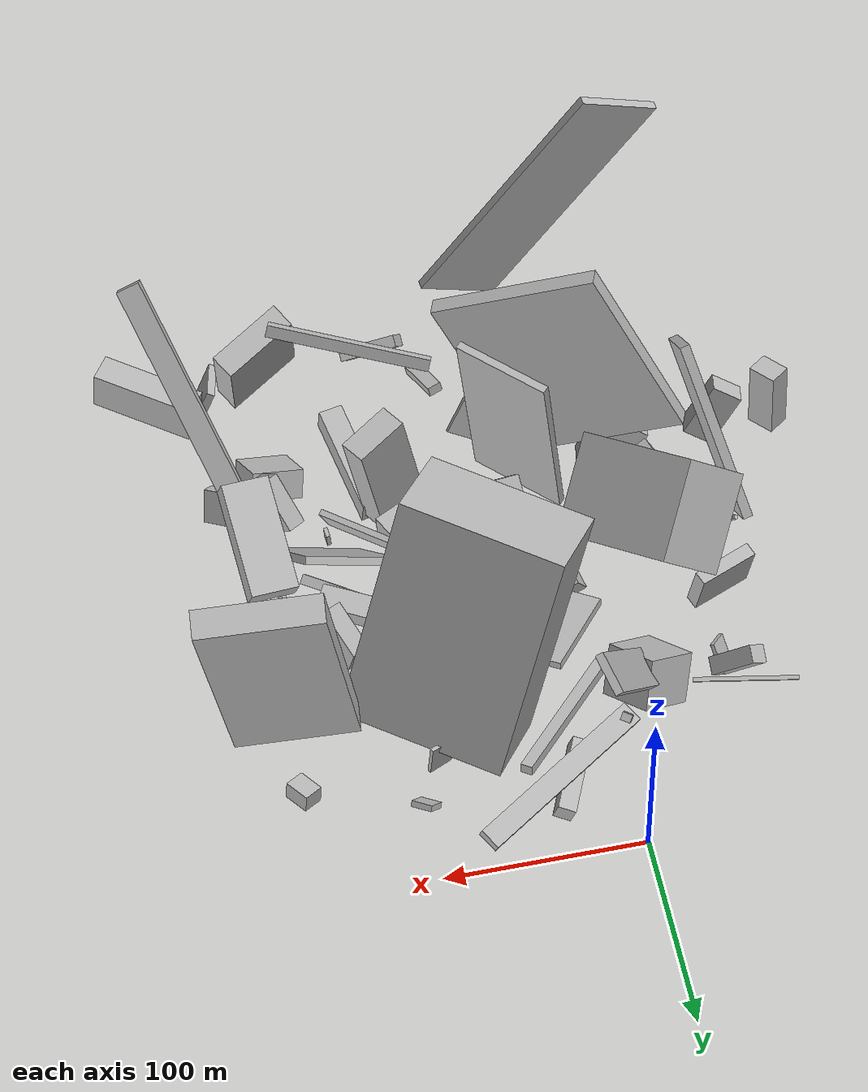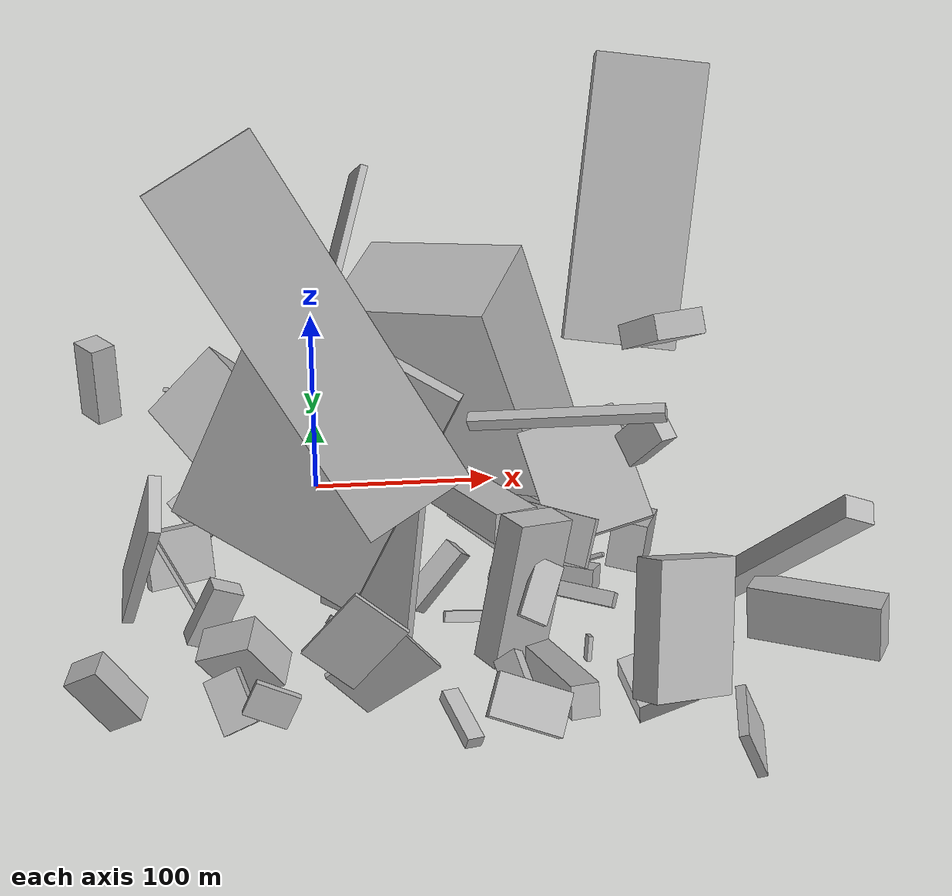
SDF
<sdf version="1.6">
 <world name="default">
  <model name="building_9">
   <static>0</static>
   <pose>60.13477899382774 -101.71023403036946 83.49066467808512 1.1164398579038701 0.09464951068654272 2.5554855638131153</pose>
   <link name="link">
    <gravity>0</gravity>
    <pose>0 0 25.5 0 0 0</pose>
    <collision name="collision"><geometry><box><size>82 119 51</size></box></geometry></collision>
    <visual name="visual">
     <cast_shadows>0</cast_shadows>
     <geometry><box><size>82 119 51</size></box></geometry>
     <material>
      <script>
       <uri>model://HANNAS_wall/materials/scripts</uri>
       <uri>model://HANNAS_wall/materials/textures</uri>
       <name>vrc/HANNAS_wall</name>
      </script>
     </material>
    </visual>
   </link>
  </model>
  <model name="building_14">
   <static>0</static>
   <pose>160.7187048860955 -40.6248234948643 91.645018674083 -0.11374480422894169 -0.2537876858411503 -1.6678482407939665</pose>
   <link name="link">
    <gravity>0</gravity>
    <pose>0 0 75.0 0 0 0</pose>
    <collision name="collision"><geometry><box><size>14 59 150</size></box></geometry></collision>
    <visual name="visual">
     <cast_shadows>0</cast_shadows>
     <geometry><box><size>14 59 150</size></box></geometry>
     <material>
      <script>
       <uri>model://HANNAS_wall/materials/scripts</uri>
       <uri>model://HANNAS_wall/materials/textures</uri>
       <name>vrc/HANNAS_wall</name>
      </script>
     </material>
    </visual>
   </link>
  </model>
  <model name="building_15">
   <static>0</static>
   <pose>-19.535070318286742 -119.30955158458937 67.90622841023128 -0.8755035193617655 -0.4528839900669452 2.260460562549237</pose>
   <link name="link">
    <gravity>0</gravity>
    <pose>0 0 25.0 0 0 0</pose>
    <collision name="collision"><geometry><box><size>70 40 50</size></box></geometry></collision>
    <visual name="visual">
     <cast_shadows>0</cast_shadows>
     <geometry><box><size>70 40 50</size></box></geometry>
     <material>
      <script>
       <uri>model://HANNAS_wall/materials/scripts</uri>
       <uri>model://HANNAS_wall/materials/textures</uri>
       <name>vrc/HANNAS_wall</name>
      </script>
     </material>
    </visual>
   </link>
  </model>
  <model name="building_16">
   <static>0</static>
   <pose>172.7355395353499 -241.46146706500215 64.11279238283072 2.3700065892392104 0.3466365825402684 0.09729424033469207</pose>
   <link name="link">
    <gravity>0</gravity>
    <pose>0 0 4.5 0 0 0</pose>
    <collision name="collision"><geometry><box><size>12 150 9</size></box></geometry></collision>
    <visual name="visual">
     <cast_shadows>0</cast_shadows>
     <geometry><box><size>12 150 9</size></box></geometry>
     <material>
      <script>
       <uri>model://HANNAS_wall/materials/scripts</uri>
       <uri>model://HANNAS_wall/materials/textures</uri>
       <name>vrc/HANNAS_wall</name>
      </script>
     </material>
    </visual>
   </link>
  </model>
  <model name="building_18">
   <static>0</static>
   <pose>170.8844857625791 -256.08720031553906 51.54665389722184 -0.25249838128735286 -1.5036676789013927 2.800130498686935</pose>
   <link name="link">
    <gravity>0</gravity>
    <pose>0 0 26.0 0 0 0</pose>
    <collision name="collision"><geometry><box><size>22 14 52</size></box></geometry></collision>
    <visual name="visual">
     <cast_shadows>0</cast_shadows>
     <geometry><box><size>22 14 52</size></box></geometry>
     <material>
      <script>
       <uri>model://HANNAS_wall/materials/scripts</uri>
       <uri>model://HANNAS_wall/materials/textures</uri>
       <name>vrc/HANNAS_wall</name>
      </script>
     </material>
    </visual>
   </link>
  </model>
  <model name="building_27">
   <static>0</static>
   <pose>13.74465970143904 -116.24034920806787 14.94196082592813 -0.1705758622511373 0.11733676189713037 -2.2309354585838594</pose>
   <link name="link">
    <gravity>0</gravity>
    <pose>0 0 2.0 0 0 0</pose>
    <collision name="collision"><geometry><box><size>47 15 4</size></box></geometry></collision>
    <visual name="visual">
     <cast_shadows>0</cast_shadows>
     <geometry><box><size>47 15 4</size></box></geometry>
     <material>
      <script>
       <uri>model://HANNAS_wall/materials/scripts</uri>
       <uri>model://HANNAS_wall/materials/textures</uri>
       <name>vrc/HANNAS_wall</name>
      </script>
     </material>
    </visual>
   </link>
  </model>
  <model name="building_28">
   <static>0</static>
   <pose>160.47362897193221 -125.85510367707263 18.009385944091832 -1.0356911204883308 -1.3672941690821099 0.6542306050220811</pose>
   <link name="link">
    <gravity>0</gravity>
    <pose>0 0 8.5 0 0 0</pose>
    <collision name="collision"><geometry><box><size>23 36 17</size></box></geometry></collision>
    <visual name="visual">
     <cast_shadows>0</cast_shadows>
     <geometry><box><size>23 36 17</size></box></geometry>
     <material>
      <script>
       <uri>model://HANNAS_wall/materials/scripts</uri>
       <uri>model://HANNAS_wall/materials/textures</uri>
       <name>vrc/HANNAS_wall</name>
      </script>
     </material>
    </visual>
   </link>
  </model>
  <model name="building_30">
   <static>0</static>
   <pose>28.926033329928195 -185.80888653516772 30.63388241619656 0.004264825466254507 -0.6442551364319137 -1.4571450838844509</pose>
   <link name="link">
    <gravity>0</gravity>
    <pose>0 0 4.0 0 0 0</pose>
    <collision name="collision"><geometry><box><size>28 16 8</size></box></geometry></collision>
    <visual name="visual">
     <cast_shadows>0</cast_shadows>
     <geometry><box><size>28 16 8</size></box></geometry>
     <material>
      <script>
       <uri>model://HANNAS_wall/materials/scripts</uri>
       <uri>model://HANNAS_wall/materials/textures</uri>
       <name>vrc/HANNAS_wall</name>
      </script>
     </material>
    </visual>
   </link>
  </model>
  <model name="building_31">
   <static>0</static>
   <pose>42.055347397990644 -216.9180732111798 78.5365733565686 -1.4642324846294754 -1.4266939049242715 0.6672654650277461</pose>
   <link name="link">
    <gravity>0</gravity>
    <pose>0 0 25.0 0 0 0</pose>
    <collision name="collision"><geometry><box><size>108 4 50</size></box></geometry></collision>
    <visual name="visual">
     <cast_shadows>0</cast_shadows>
     <geometry><box><size>108 4 50</size></box></geometry>
     <material>
      <script>
       <uri>model://HANNAS_wall/materials/scripts</uri>
       <uri>model://HANNAS_wall/materials/textures</uri>
       <name>vrc/HANNAS_wall</name>
      </script>
     </material>
    </visual>
   </link>
  </model>
  <model name="building_36">
   <static>0</static>
   <pose>-21.493926255507375 -226.3154397715121 25.89433831909068 2.283878639696302 -0.9434738710445192 -2.6021172739589566</pose>
   <link name="link">
    <gravity>0</gravity>
    <pose>0 0 13.0 0 0 0</pose>
    <collision name="collision"><geometry><box><size>28 16 26</size></box></geometry></collision>
    <visual name="visual">
     <cast_shadows>0</cast_shadows>
     <geometry><box><size>28 16 26</size></box></geometry>
     <material>
      <script>
       <uri>model://HANNAS_wall/materials/scripts</uri>
       <uri>model://HANNAS_wall/materials/textures</uri>
       <name>vrc/HANNAS_wall</name>
      </script>
     </material>
    </visual>
   </link>
  </model>
  <model name="building_39">
   <static>0</static>
   <pose>116.51291447882542 -146.66933766453351 15.271578702733533 -0.06804166189960638 -1.3950843937231159 1.139825785941166</pose>
   <link name="link">
    <gravity>0</gravity>
    <pose>0 0 6.0 0 0 0</pose>
    <collision name="collision"><geometry><box><size>11 32 12</size></box></geometry></collision>
    <visual name="visual">
     <cast_shadows>0</cast_shadows>
     <geometry><box><size>11 32 12</size></box></geometry>
     <material>
      <script>
       <uri>model://HANNAS_wall/materials/scripts</uri>
       <uri>model://HANNAS_wall/materials/textures</uri>
       <name>vrc/HANNAS_wall</name>
      </script>
     </material>
    </visual>
   </link>
  </model>
  <model name="building_40">
   <static>0</static>
   <pose>81.5292968145032 -206.25808592437338 41.836148646674545 1.9453895226269167 -1.3936320498122434 0.1757834339767797</pose>
   <link name="link">
    <gravity>0</gravity>
    <pose>0 0 7.0 0 0 0</pose>
    <collision name="collision"><geometry><box><size>65 28 14</size></box></geometry></collision>
    <visual name="visual">
     <cast_shadows>0</cast_shadows>
     <geometry><box><size>65 28 14</size></box></geometry>
     <material>
      <script>
       <uri>model://HANNAS_wall/materials/scripts</uri>
       <uri>model://HANNAS_wall/materials/textures</uri>
       <name>vrc/HANNAS_wall</name>
      </script>
     </material>
    </visual>
   </link>
  </model>
  <model name="building_43">
   <static>0</static>
   <pose>128.8175259623771 -168.4559072783942 44.33646672936675 -0.38592492895103275 0.6846433082310964 1.3121655891506354</pose>
   <link name="link">
    <gravity>0</gravity>
    <pose>0 0 28.5 0 0 0</pose>
    <collision name="collision"><geometry><box><size>4 47 57</size></box></geometry></collision>
    <visual name="visual">
     <cast_shadows>0</cast_shadows>
     <geometry><box><size>4 47 57</size></box></geometry>
     <material>
      <script>
       <uri>model://HANNAS_wall/materials/scripts</uri>
       <uri>model://HANNAS_wall/materials/textures</uri>
       <name>vrc/HANNAS_wall</name>
      </script>
     </material>
    </visual>
   </link>
  </model>
  <model name="building_45">
   <static>0</static>
   <pose>37.38668943945802 -267.5259361406471 105.66129239658703 0.5129553614419627 -0.14192077662287586 -1.4431835028182016</pose>
   <link name="link">
    <gravity>0</gravity>
    <pose>0 0 75.0 0 0 0</pose>
    <collision name="collision"><geometry><box><size>4 44 150</size></box></geometry></collision>
    <visual name="visual">
     <cast_shadows>0</cast_shadows>
     <geometry><box><size>4 44 150</size></box></geometry>
     <material>
      <script>
       <uri>model://HANNAS_wall/materials/scripts</uri>
       <uri>model://HANNAS_wall/materials/textures</uri>
       <name>vrc/HANNAS_wall</name>
      </script>
     </material>
    </visual>
   </link>
  </model>
  <model name="building_51">
   <static>0</static>
   <pose>3.6267591983016567 -36.0760430129864 56.49287037208893 -0.6863389545868653 -0.08577514298369474 -0.6016864799801788</pose>
   <link name="link">
    <gravity>0</gravity>
    <pose>0 0 2.0 0 0 0</pose>
    <collision name="collision"><geometry><box><size>5 4 4</size></box></geometry></collision>
    <visual name="visual">
     <cast_shadows>0</cast_shadows>
     <geometry><box><size>5 4 4</size></box></geometry>
     <material>
      <script>
       <uri>model://HANNAS_wall/materials/scripts</uri>
       <uri>model://HANNAS_wall/materials/textures</uri>
       <name>vrc/HANNAS_wall</name>
      </script>
     </material>
    </visual>
   </link>
  </model>
  <model name="building_58">
   <static>0</static>
   <pose>11.19550775909859 -31.416532730148703 119.86747916447648 2.0795435457983507 -0.3886245515905573 -3.014081893708881</pose>
   <link name="link">
    <gravity>0</gravity>
    <pose>0 0 10.0 0 0 0</pose>
    <collision name="collision"><geometry><box><size>4 150 20</size></box></geometry></collision>
    <visual name="visual">
     <cast_shadows>0</cast_shadows>
     <geometry><box><size>4 150 20</size></box></geometry>
     <material>
      <script>
       <uri>model://HANNAS_wall/materials/scripts</uri>
       <uri>model://HANNAS_wall/materials/textures</uri>
       <name>vrc/HANNAS_wall</name>
      </script>
     </material>
    </visual>
   </link>
  </model>
  <model name="building_59">
   <static>0</static>
   <pose>-77.23962383034741 -193.77720168416965 57.536331493453645 1.7814912858971435 -0.6945624615126622 1.6019289732765027</pose>
   <link name="link">
    <gravity>0</gravity>
    <pose>0 0 2.5 0 0 0</pose>
    <collision name="collision"><geometry><box><size>25 93 5</size></box></geometry></collision>
    <visual name="visual">
     <cast_shadows>0</cast_shadows>
     <geometry><box><size>25 93 5</size></box></geometry>
     <material>
      <script>
       <uri>model://HANNAS_wall/materials/scripts</uri>
       <uri>model://HANNAS_wall/materials/textures</uri>
       <name>vrc/HANNAS_wall</name>
      </script>
     </material>
    </visual>
   </link>
  </model>
  <model name="building_73">
   <static>0</static>
   <pose>-0.06467661539446201 -207.6403695879903 105.65387521206422 1.6181936166871658 -1.1221819288779535 -0.40725379035082354</pose>
   <link name="link">
    <gravity>0</gravity>
    <pose>0 0 4.0 0 0 0</pose>
    <collision name="collision"><geometry><box><size>109 86 8</size></box></geometry></collision>
    <visual name="visual">
     <cast_shadows>0</cast_shadows>
     <geometry><box><size>109 86 8</size></box></geometry>
     <material>
      <script>
       <uri>model://HANNAS_wall/materials/scripts</uri>
       <uri>model://HANNAS_wall/materials/textures</uri>
       <name>vrc/HANNAS_wall</name>
      </script>
     </material>
    </visual>
   </link>
  </model>
  <model name="building_80">
   <static>0</static>
   <pose>38.40735266975197 -25.916440771075777 29.807992368216247 0.013754758272744489 -0.3324648982654946 -0.963768154062798</pose>
   <link name="link">
    <gravity>0</gravity>
    <pose>0 0 2.5 0 0 0</pose>
    <collision name="collision"><geometry><box><size>11 100 5</size></box></geometry></collision>
    <visual name="visual">
     <cast_shadows>0</cast_shadows>
     <geometry><box><size>11 100 5</size></box></geometry>
     <material>
      <script>
       <uri>model://HANNAS_wall/materials/scripts</uri>
       <uri>model://HANNAS_wall/materials/textures</uri>
       <name>vrc/HANNAS_wall</name>
      </script>
     </material>
    </visual>
   </link>
  </model>
  <model name="building_83">
   <static>0</static>
   <pose>164.31575909930567 -280.4591549754232 20.92920190054249 1.8740435610217325 -0.3602246157586075 -0.3198631383567986</pose>
   <link name="link">
    <gravity>0</gravity>
    <pose>0 0 12.5 0 0 0</pose>
    <collision name="collision"><geometry><box><size>4 24 25</size></box></geometry></collision>
    <visual name="visual">
     <cast_shadows>0</cast_shadows>
     <geometry><box><size>4 24 25</size></box></geometry>
     <material>
      <script>
       <uri>model://HANNAS_wall/materials/scripts</uri>
       <uri>model://HANNAS_wall/materials/textures</uri>
       <name>vrc/HANNAS_wall</name>
      </script>
     </material>
    </visual>
   </link>
  </model>
  <model name="building_96">
   <static>0</static>
   <pose>-37.56960170951569 -246.48417713197412 15.367643678904642 -2.091616285076537 -0.4677627483496183 -0.08022161256792368</pose>
   <link name="link">
    <gravity>0</gravity>
    <pose>0 0 2.5 0 0 0</pose>
    <collision name="collision"><geometry><box><size>15 23 5</size></box></geometry></collision>
    <visual name="visual">
     <cast_shadows>0</cast_shadows>
     <geometry><box><size>15 23 5</size></box></geometry>
     <material>
      <script>
       <uri>model://HANNAS_wall/materials/scripts</uri>
       <uri>model://HANNAS_wall/materials/textures</uri>
       <name>vrc/HANNAS_wall</name>
      </script>
     </material>
    </visual>
   </link>
  </model>
  <model name="building_99">
   <static>0</static>
   <pose>65.05039845798211 -155.71467629238504 53.74440786786024 1.647272386277625 0.014075715308959059 2.023824696408347</pose>
   <link name="link">
    <gravity>0</gravity>
    <pose>0 0 11.0 0 0 0</pose>
    <collision name="collision"><geometry><box><size>56 14 22</size></box></geometry></collision>
    <visual name="visual">
     <cast_shadows>0</cast_shadows>
     <geometry><box><size>56 14 22</size></box></geometry>
     <material>
      <script>
       <uri>model://HANNAS_wall/materials/scripts</uri>
       <uri>model://HANNAS_wall/materials/textures</uri>
       <name>vrc/HANNAS_wall</name>
      </script>
     </material>
    </visual>
   </link>
  </model>
  <model name="building_101">
   <static>0</static>
   <pose>-80.50775036444769 -236.44643370881425 19.568754966464535 2.579005609089667 -0.9886999041580677 -2.837595979776282</pose>
   <link name="link">
    <gravity>0</gravity>
    <pose>0 0 8.0 0 0 0</pose>
    <collision name="collision"><geometry><box><size>30 12 16</size></box></geometry></collision>
    <visual name="visual">
     <cast_shadows>0</cast_shadows>
     <geometry><box><size>30 12 16</size></box></geometry>
     <material>
      <script>
       <uri>model://HANNAS_wall/materials/scripts</uri>
       <uri>model://HANNAS_wall/materials/textures</uri>
       <name>vrc/HANNAS_wall</name>
      </script>
     </material>
    </visual>
   </link>
  </model>
  <model name="building_102">
   <static>0</static>
   <pose>-24.691626471100154 -71.68963378919017 36.888186750137706 1.0141726899835417 -0.37536351839058724 2.222005344900936</pose>
   <link name="link">
    <gravity>0</gravity>
    <pose>0 0 14.0 0 0 0</pose>
    <collision name="collision"><geometry><box><size>28 25 28</size></box></geometry></collision>
    <visual name="visual">
     <cast_shadows>0</cast_shadows>
     <geometry><box><size>28 25 28</size></box></geometry>
     <material>
      <script>
       <uri>model://HANNAS_wall/materials/scripts</uri>
       <uri>model://HANNAS_wall/materials/textures</uri>
       <name>vrc/HANNAS_wall</name>
      </script>
     </material>
    </visual>
   </link>
  </model>
  <model name="building_108">
   <static>0</static>
   <pose>134.51749401031947 -100.51323365979732 13.39839643581793 -2.5728118656169143 -0.6028708235725391 1.1151201369019275</pose>
   <link name="link">
    <gravity>0</gravity>
    <pose>0 0 1.0 0 0 0</pose>
    <collision name="collision"><geometry><box><size>16 2 2</size></box></geometry></collision>
    <visual name="visual">
     <cast_shadows>0</cast_shadows>
     <geometry><box><size>16 2 2</size></box></geometry>
     <material>
      <script>
       <uri>model://HANNAS_wall/materials/scripts</uri>
       <uri>model://HANNAS_wall/materials/textures</uri>
       <name>vrc/HANNAS_wall</name>
      </script>
     </material>
    </visual>
   </link>
  </model>
  <model name="building_111">
   <static>0</static>
   <pose>87.80346423057469 -79.54452482877798 17.32298285426276 0.11153918212735218 0.3478860569049579 0.7764847989527623</pose>
   <link name="link">
    <gravity>0</gravity>
    <pose>0 0 8.0 0 0 0</pose>
    <collision name="collision"><geometry><box><size>6 74 16</size></box></geometry></collision>
    <visual name="visual">
     <cast_shadows>0</cast_shadows>
     <geometry><box><size>6 74 16</size></box></geometry>
     <material>
      <script>
       <uri>model://HANNAS_wall/materials/scripts</uri>
       <uri>model://HANNAS_wall/materials/textures</uri>
       <name>vrc/HANNAS_wall</name>
      </script>
     </material>
    </visual>
   </link>
  </model>
  <model name="building_112">
   <static>0</static>
   <pose>103.27885499697618 -34.339830177985384 12.90645090383228 -2.289157375866403 -0.22311491774592782 2.486664196735993</pose>
   <link name="link">
    <gravity>0</gravity>
    <pose>0 0 5.0 0 0 0</pose>
    <collision name="collision"><geometry><box><size>11 3 10</size></box></geometry></collision>
    <visual name="visual">
     <cast_shadows>0</cast_shadows>
     <geometry><box><size>11 3 10</size></box></geometry>
     <material>
      <script>
       <uri>model://HANNAS_wall/materials/scripts</uri>
       <uri>model://HANNAS_wall/materials/textures</uri>
       <name>vrc/HANNAS_wall</name>
      </script>
     </material>
    </visual>
   </link>
  </model>
  <model name="building_120">
   <static>0</static>
   <pose>99.71022611483444 -226.33229231027616 121.47941350248415 0.542732728016652 -0.1419292894242148 -0.3635055326876253</pose>
   <link name="link">
    <gravity>0</gravity>
    <pose>0 0 3.0 0 0 0</pose>
    <collision name="collision"><geometry><box><size>80 5 6</size></box></geometry></collision>
    <visual name="visual">
     <cast_shadows>0</cast_shadows>
     <geometry><box><size>80 5 6</size></box></geometry>
     <material>
      <script>
       <uri>model://HANNAS_wall/materials/scripts</uri>
       <uri>model://HANNAS_wall/materials/textures</uri>
       <name>vrc/HANNAS_wall</name>
      </script>
     </material>
    </visual>
   </link>
  </model>
  <model name="building_121">
   <static>0</static>
   <pose>-62.28909645614067 -76.11682794858474 18.853218241275314 -0.9954246588176238 0.6038841207338839 -2.7888241864319774</pose>
   <link name="link">
    <gravity>0</gravity>
    <pose>0 0 4.5 0 0 0</pose>
    <collision name="collision"><geometry><box><size>10 27 9</size></box></geometry></collision>
    <visual name="visual">
     <cast_shadows>0</cast_shadows>
     <geometry><box><size>10 27 9</size></box></geometry>
     <material>
      <script>
       <uri>model://HANNAS_wall/materials/scripts</uri>
       <uri>model://HANNAS_wall/materials/textures</uri>
       <name>vrc/HANNAS_wall</name>
      </script>
     </material>
    </visual>
   </link>
  </model>
  <model name="building_124">
   <static>0</static>
   <pose>96.62344443046373 -222.46045385324308 41.7763001987631 -0.7886870465973117 -0.8000636927972963 1.016001473822924</pose>
   <link name="link">
    <gravity>0</gravity>
    <pose>0 0 6.5 0 0 0</pose>
    <collision name="collision"><geometry><box><size>26 3 13</size></box></geometry></collision>
    <visual name="visual">
     <cast_shadows>0</cast_shadows>
     <geometry><box><size>26 3 13</size></box></geometry>
     <material>
      <script>
       <uri>model://HANNAS_wall/materials/scripts</uri>
       <uri>model://HANNAS_wall/materials/textures</uri>
       <name>vrc/HANNAS_wall</name>
      </script>
     </material>
    </visual>
   </link>
  </model>
  <model name="building_127">
   <static>0</static>
   <pose>164.58459632872214 -148.86696837508637 136.18959596195126 1.9599734785516443 0.08217615384535532 -3.0171547572447754</pose>
   <link name="link">
    <gravity>0</gravity>
    <pose>0 0 27.5 0 0 0</pose>
    <collision name="collision"><geometry><box><size>23 12 55</size></box></geometry></collision>
    <visual name="visual">
     <cast_shadows>0</cast_shadows>
     <geometry><box><size>23 12 55</size></box></geometry>
     <material>
      <script>
       <uri>model://HANNAS_wall/materials/scripts</uri>
       <uri>model://HANNAS_wall/materials/textures</uri>
       <name>vrc/HANNAS_wall</name>
      </script>
     </material>
    </visual>
   </link>
  </model>
  <model name="building_133">
   <static>0</static>
   <pose>67.79124223027493 -180.92692991224908 9.25432580308943 0.28929247046710777 -0.18147507929260506 -2.8704161750726698</pose>
   <link name="link">
    <gravity>0</gravity>
    <pose>0 0 2.5 0 0 0</pose>
    <collision name="collision"><geometry><box><size>29 2 5</size></box></geometry></collision>
    <visual name="visual">
     <cast_shadows>0</cast_shadows>
     <geometry><box><size>29 2 5</size></box></geometry>
     <material>
      <script>
       <uri>model://HANNAS_wall/materials/scripts</uri>
       <uri>model://HANNAS_wall/materials/textures</uri>
       <name>vrc/HANNAS_wall</name>
      </script>
     </material>
    </visual>
   </link>
  </model>
  <model name="building_136">
   <static>0</static>
   <pose>148.54140576862824 -114.42975717653378 63.88475121698161 -1.3581551202248283 -0.9561484688846357 1.6574721471986609</pose>
   <link name="link">
    <gravity>0</gravity>
    <pose>0 0 1.0 0 0 0</pose>
    <collision name="collision"><geometry><box><size>13 80 2</size></box></geometry></collision>
    <visual name="visual">
     <cast_shadows>0</cast_shadows>
     <geometry><box><size>13 80 2</size></box></geometry>
     <material>
      <script>
       <uri>model://HANNAS_wall/materials/scripts</uri>
       <uri>model://HANNAS_wall/materials/textures</uri>
       <name>vrc/HANNAS_wall</name>
      </script>
     </material>
    </visual>
   </link>
  </model>
  <model name="building_141">
   <static>0</static>
   <pose>32.57563767729596 -54.79385684088267 39.59256027326023 0.8319259815590043 -1.3394231338917917 -1.5115527122957813</pose>
   <link name="link">
    <gravity>0</gravity>
    <pose>0 0 3.0 0 0 0</pose>
    <collision name="collision"><geometry><box><size>5 79 6</size></box></geometry></collision>
    <visual name="visual">
     <cast_shadows>0</cast_shadows>
     <geometry><box><size>5 79 6</size></box></geometry>
     <material>
      <script>
       <uri>model://HANNAS_wall/materials/scripts</uri>
       <uri>model://HANNAS_wall/materials/textures</uri>
       <name>vrc/HANNAS_wall</name>
      </script>
     </material>
    </visual>
   </link>
  </model>
  <model name="building_142">
   <static>0</static>
   <pose>50.57995089288862 -158.77881909790642 22.182624483571534 -2.196968523909513 0.42382560194446295 -0.7896018343195622</pose>
   <link name="link">
    <gravity>0</gravity>
    <pose>0 0 6.0 0 0 0</pose>
    <collision name="collision"><geometry><box><size>10 34 12</size></box></geometry></collision>
    <visual name="visual">
     <cast_shadows>0</cast_shadows>
     <geometry><box><size>10 34 12</size></box></geometry>
     <material>
      <script>
       <uri>model://HANNAS_wall/materials/scripts</uri>
       <uri>model://HANNAS_wall/materials/textures</uri>
       <name>vrc/HANNAS_wall</name>
      </script>
     </material>
    </visual>
   </link>
  </model>
  <model name="building_143">
   <static>0</static>
   <pose>124.10191447175902 -132.4447887560631 10.735518419632813 0.6771377179979965 0.46639875895051963 2.626774096176917</pose>
   <link name="link">
    <gravity>0</gravity>
    <pose>0 0 1.0 0 0 0</pose>
    <collision name="collision"><geometry><box><size>29 2 2</size></box></geometry></collision>
    <visual name="visual">
     <cast_shadows>0</cast_shadows>
     <geometry><box><size>29 2 2</size></box></geometry>
     <material>
      <script>
       <uri>model://HANNAS_wall/materials/scripts</uri>
       <uri>model://HANNAS_wall/materials/textures</uri>
       <name>vrc/HANNAS_wall</name>
      </script>
     </material>
    </visual>
   </link>
  </model>
  <model name="building_148">
   <static>0</static>
   <pose>8.053187983030014 -203.67094236158903 25.654388857859217 2.484938814995554 -0.22503160111775705 -1.3693112379041128</pose>
   <link name="link">
    <gravity>0</gravity>
    <pose>0 0 2.0 0 0 0</pose>
    <collision name="collision"><geometry><box><size>2 10 4</size></box></geometry></collision>
    <visual name="visual">
     <cast_shadows>0</cast_shadows>
     <geometry><box><size>2 10 4</size></box></geometry>
     <material>
      <script>
       <uri>model://HANNAS_wall/materials/scripts</uri>
       <uri>model://HANNAS_wall/materials/textures</uri>
       <name>vrc/HANNAS_wall</name>
      </script>
     </material>
    </visual>
   </link>
  </model>
  <model name="building_150">
   <static>0</static>
   <pose>133.2760304007843 -275.8238276488116 56.19505679356271 0.7499543144195365 -1.2212385383020647 1.3548717775391361</pose>
   <link name="link">
    <gravity>0</gravity>
    <pose>0 0 6.5 0 0 0</pose>
    <collision name="collision"><geometry><box><size>53 40 13</size></box></geometry></collision>
    <visual name="visual">
     <cast_shadows>0</cast_shadows>
     <geometry><box><size>53 40 13</size></box></geometry>
     <material>
      <script>
       <uri>model://HANNAS_wall/materials/scripts</uri>
       <uri>model://HANNAS_wall/materials/textures</uri>
       <name>vrc/HANNAS_wall</name>
      </script>
     </material>
    </visual>
   </link>
  </model>
  <model name="building_153">
   <static>0</static>
   <pose>-27.89370359748424 -281.43564382041427 38.540269663413156 2.0040571068000235 0.022532095516050368 1.5714020871307353</pose>
   <link name="link">
    <gravity>0</gravity>
    <pose>0 0 9.0 0 0 0</pose>
    <collision name="collision"><geometry><box><size>3 14 18</size></box></geometry></collision>
    <visual name="visual">
     <cast_shadows>0</cast_shadows>
     <geometry><box><size>3 14 18</size></box></geometry>
     <material>
      <script>
       <uri>model://HANNAS_wall/materials/scripts</uri>
       <uri>model://HANNAS_wall/materials/textures</uri>
       <name>vrc/HANNAS_wall</name>
      </script>
     </material>
    </visual>
   </link>
  </model>
  <model name="building_155">
   <static>0</static>
   <pose>95.519113440198 -152.57546114421586 29.725689292334565 -0.3658435467116789 -1.0410795883041806 -0.08427785005273875</pose>
   <link name="link">
    <gravity>0</gravity>
    <pose>0 0 19.5 0 0 0</pose>
    <collision name="collision"><geometry><box><size>13 12 39</size></box></geometry></collision>
    <visual name="visual">
     <cast_shadows>0</cast_shadows>
     <geometry><box><size>13 12 39</size></box></geometry>
     <material>
      <script>
       <uri>model://HANNAS_wall/materials/scripts</uri>
       <uri>model://HANNAS_wall/materials/textures</uri>
       <name>vrc/HANNAS_wall</name>
      </script>
     </material>
    </visual>
   </link>
  </model>
  <model name="building_159">
   <static>0</static>
   <pose>102.23696674262723 -238.5085378924907 13.760840645067546 -1.5044440920655664 -1.3871153033282702 1.7085523961454696</pose>
   <link name="link">
    <gravity>0</gravity>
    <pose>0 0 6.0 0 0 0</pose>
    <collision name="collision"><geometry><box><size>14 57 12</size></box></geometry></collision>
    <visual name="visual">
     <cast_shadows>0</cast_shadows>
     <geometry><box><size>14 57 12</size></box></geometry>
     <material>
      <script>
       <uri>model://HANNAS_wall/materials/scripts</uri>
       <uri>model://HANNAS_wall/materials/textures</uri>
       <name>vrc/HANNAS_wall</name>
      </script>
     </material>
    </visual>
   </link>
  </model>
  <model name="building_169">
   <static>0</static>
   <pose>159.75137049764788 -36.19899851417938 35.02697218527748 -0.17198388459491226 -0.07051023123313317 2.186085944231897</pose>
   <link name="link">
    <gravity>0</gravity>
    <pose>0 0 4.5 0 0 0</pose>
    <collision name="collision"><geometry><box><size>13 10 9</size></box></geometry></collision>
    <visual name="visual">
     <cast_shadows>0</cast_shadows>
     <geometry><box><size>13 10 9</size></box></geometry>
     <material>
      <script>
       <uri>model://HANNAS_wall/materials/scripts</uri>
       <uri>model://HANNAS_wall/materials/textures</uri>
       <name>vrc/HANNAS_wall</name>
      </script>
     </material>
    </visual>
   </link>
  </model>
  <model name="building_174">
   <static>0</static>
   <pose>-54.6487388799112 -92.51753732957152 22.88390357105132 2.8102671323995225 -0.5077686883604198 2.61078507321986</pose>
   <link name="link">
    <gravity>0</gravity>
    <pose>0 0 8.5 0 0 0</pose>
    <collision name="collision"><geometry><box><size>2 10 17</size></box></geometry></collision>
    <visual name="visual">
     <cast_shadows>0</cast_shadows>
     <geometry><box><size>2 10 17</size></box></geometry>
     <material>
      <script>
       <uri>model://HANNAS_wall/materials/scripts</uri>
       <uri>model://HANNAS_wall/materials/textures</uri>
       <name>vrc/HANNAS_wall</name>
      </script>
     </material>
    </visual>
   </link>
  </model>
  <model name="building_181">
   <static>0</static>
   <pose>136.93048534680537 -244.92648097866675 16.71197170336775 -2.595059486488861 -0.27286577575021376 0.12011126232586927</pose>
   <link name="link">
    <gravity>0</gravity>
    <pose>0 0 7.5 0 0 0</pose>
    <collision name="collision"><geometry><box><size>27 23 15</size></box></geometry></collision>
    <visual name="visual">
     <cast_shadows>0</cast_shadows>
     <geometry><box><size>27 23 15</size></box></geometry>
     <material>
      <script>
       <uri>model://HANNAS_wall/materials/scripts</uri>
       <uri>model://HANNAS_wall/materials/textures</uri>
       <name>vrc/HANNAS_wall</name>
      </script>
     </material>
    </visual>
   </link>
  </model>
  <model name="building_183">
   <static>0</static>
   <pose>171.17803395440725 -230.10352893905485 12.939517710812384 -1.2890575561807043 -0.5394816839360685 0.8036794064069709</pose>
   <link name="link">
    <gravity>0</gravity>
    <pose>0 0 9.0 0 0 0</pose>
    <collision name="collision"><geometry><box><size>7 17 18</size></box></geometry></collision>
    <visual name="visual">
     <cast_shadows>0</cast_shadows>
     <geometry><box><size>7 17 18</size></box></geometry>
     <material>
      <script>
       <uri>model://HANNAS_wall/materials/scripts</uri>
       <uri>model://HANNAS_wall/materials/textures</uri>
       <name>vrc/HANNAS_wall</name>
      </script>
     </material>
    </visual>
   </link>
  </model>
  <model name="building_185">
   <static>0</static>
   <pose>99.18624229880513 -175.31595056401292 37.46500897232908 0.006478033843785512 0.4367175119105 0.9010904617390812</pose>
   <link name="link">
    <gravity>0</gravity>
    <pose>0 0 11.0 0 0 0</pose>
    <collision name="collision"><geometry><box><size>3 45 22</size></box></geometry></collision>
    <visual name="visual">
     <cast_shadows>0</cast_shadows>
     <geometry><box><size>3 45 22</size></box></geometry>
     <material>
      <script>
       <uri>model://HANNAS_wall/materials/scripts</uri>
       <uri>model://HANNAS_wall/materials/textures</uri>
       <name>vrc/HANNAS_wall</name>
      </script>
     </material>
    </visual>
   </link>
  </model>
  <model name="building_187">
   <static>0</static>
   <pose>-80.10035035559642 -134.34517459116233 23.54246319627676 1.5725489325150166 0.1944746859330582 1.9748710245394565</pose>
   <link name="link">
    <gravity>0</gravity>
    <pose>0 0 15.5 0 0 0</pose>
    <collision name="collision"><geometry><box><size>7 27 31</size></box></geometry></collision>
    <visual name="visual">
     <cast_shadows>0</cast_shadows>
     <geometry><box><size>7 27 31</size></box></geometry>
     <material>
      <script>
       <uri>model://HANNAS_wall/materials/scripts</uri>
       <uri>model://HANNAS_wall/materials/textures</uri>
       <name>vrc/HANNAS_wall</name>
      </script>
     </material>
    </visual>
   </link>
  </model>
  <model name="building_188">
   <static>0</static>
   <pose>-53.1878910816557 -36.65676172435603 70.30738410590226 0.03626865931075202 0.4347502127789595 1.3827484856988281</pose>
   <link name="link">
    <gravity>0</gravity>
    <pose>0 0 1.0 0 0 0</pose>
    <collision name="collision"><geometry><box><size>2 50 2</size></box></geometry></collision>
    <visual name="visual">
     <cast_shadows>0</cast_shadows>
     <geometry><box><size>2 50 2</size></box></geometry>
     <material>
      <script>
       <uri>model://HANNAS_wall/materials/scripts</uri>
       <uri>model://HANNAS_wall/materials/textures</uri>
       <name>vrc/HANNAS_wall</name>
      </script>
     </material>
    </visual>
   </link>
  </model>
  <model name="building_191">
   <static>0</static>
   <pose>38.74925555357446 -248.07066026843412 35.88413550262905 2.199172973061022 0.34568284221009316 -1.3879347926850654</pose>
   <link name="link">
    <gravity>0</gravity>
    <pose>0 0 18.0 0 0 0</pose>
    <collision name="collision"><geometry><box><size>2 32 36</size></box></geometry></collision>
    <visual name="visual">
     <cast_shadows>0</cast_shadows>
     <geometry><box><size>2 32 36</size></box></geometry>
     <material>
      <script>
       <uri>model://HANNAS_wall/materials/scripts</uri>
       <uri>model://HANNAS_wall/materials/textures</uri>
       <name>vrc/HANNAS_wall</name>
      </script>
     </material>
    </visual>
   </link>
  </model>
  <model name="building_193">
   <static>0</static>
   <pose>142.24191580910045 -170.54981408740588 90.30289863806952 1.5995344928352198 0.7665312003512577 2.11131404472403</pose>
   <link name="link">
    <gravity>0</gravity>
    <pose>0 0 4.5 0 0 0</pose>
    <collision name="collision"><geometry><box><size>27 16 9</size></box></geometry></collision>
    <visual name="visual">
     <cast_shadows>0</cast_shadows>
     <geometry><box><size>27 16 9</size></box></geometry>
     <material>
      <script>
       <uri>model://HANNAS_wall/materials/scripts</uri>
       <uri>model://HANNAS_wall/materials/textures</uri>
       <name>vrc/HANNAS_wall</name>
      </script>
     </material>
    </visual>
   </link>
  </model>
  <model name="building_198">
   <static>0</static>
   <pose>116.20923707451237 -205.78951527015656 6.270436765030435 2.60750801983032 1.3411418569877522 -2.0036776135777816</pose>
   <link name="link">
    <gravity>0</gravity>
    <pose>0 0 2.5 0 0 0</pose>
    <collision name="collision"><geometry><box><size>11 2 5</size></box></geometry></collision>
    <visual name="visual">
     <cast_shadows>0</cast_shadows>
     <geometry><box><size>11 2 5</size></box></geometry>
     <material>
      <script>
       <uri>model://HANNAS_wall/materials/scripts</uri>
       <uri>model://HANNAS_wall/materials/textures</uri>
       <name>vrc/HANNAS_wall</name>
      </script>
     </material>
    </visual>
   </link>
  </model>
  <model name="building_200">
   <static>0</static>
   <pose>10.386765347899253 -144.1392871080035 27.166545295113462 2.7982340060935846 0.4346545853859726 0.14090734054371623</pose>
   <link name="link">
    <gravity>0</gravity>
    <pose>0 0 9.0 0 0 0</pose>
    <collision name="collision"><geometry><box><size>9 18 18</size></box></geometry></collision>
    <visual name="visual">
     <cast_shadows>0</cast_shadows>
     <geometry><box><size>9 18 18</size></box></geometry>
     <material>
      <script>
       <uri>model://HANNAS_wall/materials/scripts</uri>
       <uri>model://HANNAS_wall/materials/textures</uri>
       <name>vrc/HANNAS_wall</name>
      </script>
     </material>
    </visual>
   </link>
  </model>
  <model name="building_202">
   <static>0</static>
   <pose>-23.154930319448894 -95.2815434997937 9.17353049502555 2.5650179735044714 1.2500299459826363 -2.8094387278881197</pose>
   <link name="link">
    <gravity>0</gravity>
    <pose>0 0 2.5 0 0 0</pose>
    <collision name="collision"><geometry><box><size>3 3 5</size></box></geometry></collision>
    <visual name="visual">
     <cast_shadows>0</cast_shadows>
     <geometry><box><size>3 3 5</size></box></geometry>
     <material>
      <script>
       <uri>model://HANNAS_wall/materials/scripts</uri>
       <uri>model://HANNAS_wall/materials/textures</uri>
       <name>vrc/HANNAS_wall</name>
      </script>
     </material>
    </visual>
   </link>
  </model>
  <model name="building_210">
   <static>0</static>
   <pose>55.028108271345054 -277.1196962164241 21.748375227498517 1.4685292151365605 0.32152087190371764 -1.244891574522702</pose>
   <link name="link">
    <gravity>0</gravity>
    <pose>0 0 3.5 0 0 0</pose>
    <collision name="collision"><geometry><box><size>25 5 7</size></box></geometry></collision>
    <visual name="visual">
     <cast_shadows>0</cast_shadows>
     <geometry><box><size>25 5 7</size></box></geometry>
     <material>
      <script>
       <uri>model://HANNAS_wall/materials/scripts</uri>
       <uri>model://HANNAS_wall/materials/textures</uri>
       <name>vrc/HANNAS_wall</name>
      </script>
     </material>
    </visual>
   </link>
  </model>
  <model name="building_218">
   <static>0</static>
   <pose>129.46079493571034 -107.44930899616118 55.15338710838657 1.4400035439846972 -0.36482585876010376 -1.148091710837641</pose>
   <link name="link">
    <gravity>0</gravity>
    <pose>0 0 4.5 0 0 0</pose>
    <collision name="collision"><geometry><box><size>26 28 9</size></box></geometry></collision>
    <visual name="visual">
     <cast_shadows>0</cast_shadows>
     <geometry><box><size>26 28 9</size></box></geometry>
     <material>
      <script>
       <uri>model://HANNAS_wall/materials/scripts</uri>
       <uri>model://HANNAS_wall/materials/textures</uri>
       <name>vrc/HANNAS_wall</name>
      </script>
     </material>
    </visual>
   </link>
  </model>
  <model name="building_221">
   <static>0</static>
   <pose>92.95302270753002 -41.026457313344686 45.98298814015098 -1.5878726147464346 -0.07329068179536168 0.46886436665978126</pose>
   <link name="link">
    <gravity>0</gravity>
    <pose>0 0 1.0 0 0 0</pose>
    <collision name="collision"><geometry><box><size>13 17 2</size></box></geometry></collision>
    <visual name="visual">
     <cast_shadows>0</cast_shadows>
     <geometry><box><size>13 17 2</size></box></geometry>
     <material>
      <script>
       <uri>model://HANNAS_wall/materials/scripts</uri>
       <uri>model://HANNAS_wall/materials/textures</uri>
       <name>vrc/HANNAS_wall</name>
      </script>
     </material>
    </visual>
   </link>
  </model>
  <model name="building_232">
   <static>0</static>
   <pose>-63.0512262785015 -157.51781471831677 27.028711105599967 -2.207082652259436 0.3797436700652758 1.2969243750111892</pose>
   <link name="link">
    <gravity>0</gravity>
    <pose>0 0 1.0 0 0 0</pose>
    <collision name="collision"><geometry><box><size>2 51 2</size></box></geometry></collision>
    <visual name="visual">
     <cast_shadows>0</cast_shadows>
     <geometry><box><size>2 51 2</size></box></geometry>
     <material>
      <script>
       <uri>model://HANNAS_wall/materials/scripts</uri>
       <uri>model://HANNAS_wall/materials/textures</uri>
       <name>vrc/HANNAS_wall</name>
      </script>
     </material>
    </visual>
   </link>
  </model>
  <model name="building_233">
   <static>0</static>
   <pose>80.4889617838262 -246.4052404641952 24.567268634300213 -2.4408432625012075 -0.5654061702430155 1.8232143004527628</pose>
   <link name="link">
    <gravity>0</gravity>
    <pose>0 0 5.5 0 0 0</pose>
    <collision name="collision"><geometry><box><size>14 6 11</size></box></geometry></collision>
    <visual name="visual">
     <cast_shadows>0</cast_shadows>
     <geometry><box><size>14 6 11</size></box></geometry>
     <material>
      <script>
       <uri>model://HANNAS_wall/materials/scripts</uri>
       <uri>model://HANNAS_wall/materials/textures</uri>
       <name>vrc/HANNAS_wall</name>
      </script>
     </material>
    </visual>
   </link>
  </model>
  <model name="building_234">
   <static>0</static>
   <pose>-44.79089018830249 -200.9178853019988 27.56922723286799 1.4168221320213665 -0.427787157492765 -2.84084963296258</pose>
   <link name="link">
    <gravity>0</gravity>
    <pose>0 0 4.5 0 0 0</pose>
    <collision name="collision"><geometry><box><size>14 29 9</size></box></geometry></collision>
    <visual name="visual">
     <cast_shadows>0</cast_shadows>
     <geometry><box><size>14 29 9</size></box></geometry>
     <material>
      <script>
       <uri>model://HANNAS_wall/materials/scripts</uri>
       <uri>model://HANNAS_wall/materials/textures</uri>
       <name>vrc/HANNAS_wall</name>
      </script>
     </material>
    </visual>
   </link>
  </model>
  <model name="building_239">
   <static>0</static>
   <pose>-87.09960165194066 -156.18680136270328 123.59152188794766 1.661776774593861 0.10664767506421209 -0.9011556952407239</pose>
   <link name="link">
    <gravity>0</gravity>
    <pose>0 0 5.5 0 0 0</pose>
    <collision name="collision"><geometry><box><size>14 34 11</size></box></geometry></collision>
    <visual name="visual">
     <cast_shadows>0</cast_shadows>
     <geometry><box><size>14 34 11</size></box></geometry>
     <material>
      <script>
       <uri>model://HANNAS_wall/materials/scripts</uri>
       <uri>model://HANNAS_wall/materials/textures</uri>
       <name>vrc/HANNAS_wall</name>
      </script>
     </material>
    </visual>
   </link>
  </model>
  <model name="building_244">
   <static>0</static>
   <pose>106.09253875530389 -159.54006551601015 9.719695222897037 0.016095397906050572 -0.5925113717345994 -2.167840277220669</pose>
   <link name="link">
    <gravity>0</gravity>
    <pose>0 0 3.5 0 0 0</pose>
    <collision name="collision"><geometry><box><size>5 63 7</size></box></geometry></collision>
    <visual name="visual">
     <cast_shadows>0</cast_shadows>
     <geometry><box><size>5 63 7</size></box></geometry>
     <material>
      <script>
       <uri>model://HANNAS_wall/materials/scripts</uri>
       <uri>model://HANNAS_wall/materials/textures</uri>
       <name>vrc/HANNAS_wall</name>
      </script>
     </material>
    </visual>
   </link>
  </model>
  <model name="building_247">
   <static>0</static>
   <pose>62.13856836590098 -290.98922267341294 39.69268188542215 -1.9728968516621757 -0.6135842533464758 -1.454180085707571</pose>
   <link name="link">
    <gravity>0</gravity>
    <pose>0 0 14.5 0 0 0</pose>
    <collision name="collision"><geometry><box><size>6 17 29</size></box></geometry></collision>
    <visual name="visual">
     <cast_shadows>0</cast_shadows>
     <geometry><box><size>6 17 29</size></box></geometry>
     <material>
      <script>
       <uri>model://HANNAS_wall/materials/scripts</uri>
       <uri>model://HANNAS_wall/materials/textures</uri>
       <name>vrc/HANNAS_wall</name>
      </script>
     </material>
    </visual>
   </link>
  </model>
  <model name="building_250">
   <static>0</static>
   <pose>22.511801000924613 -257.5196628566155 36.9396908162174 0.8922410244433916 0.10671768172870949 -1.7639196493621805</pose>
   <link name="link">
    <gravity>0</gravity>
    <pose>0 0 13.0 0 0 0</pose>
    <collision name="collision"><geometry><box><size>2 36 26</size></box></geometry></collision>
    <visual name="visual">
     <cast_shadows>0</cast_shadows>
     <geometry><box><size>2 36 26</size></box></geometry>
     <material>
      <script>
       <uri>model://HANNAS_wall/materials/scripts</uri>
       <uri>model://HANNAS_wall/materials/textures</uri>
       <name>vrc/HANNAS_wall</name>
      </script>
     </material>
    </visual>
   </link>
  </model>
  <model name="building_254">
   <static>0</static>
   <pose>32.23852769584819 -30.63829295939537 16.445966495798118 0.2771226751656972 -0.07297018169016124 -1.9754178975223957</pose>
   <link name="link">
    <gravity>0</gravity>
    <pose>0 0 5.0 0 0 0</pose>
    <collision name="collision"><geometry><box><size>39 9 10</size></box></geometry></collision>
    <visual name="visual">
     <cast_shadows>0</cast_shadows>
     <geometry><box><size>39 9 10</size></box></geometry>
     <material>
      <script>
       <uri>model://HANNAS_wall/materials/scripts</uri>
       <uri>model://HANNAS_wall/materials/textures</uri>
       <name>vrc/HANNAS_wall</name>
      </script>
     </material>
    </visual>
   </link>
  </model>
 </world>
</sdf>
